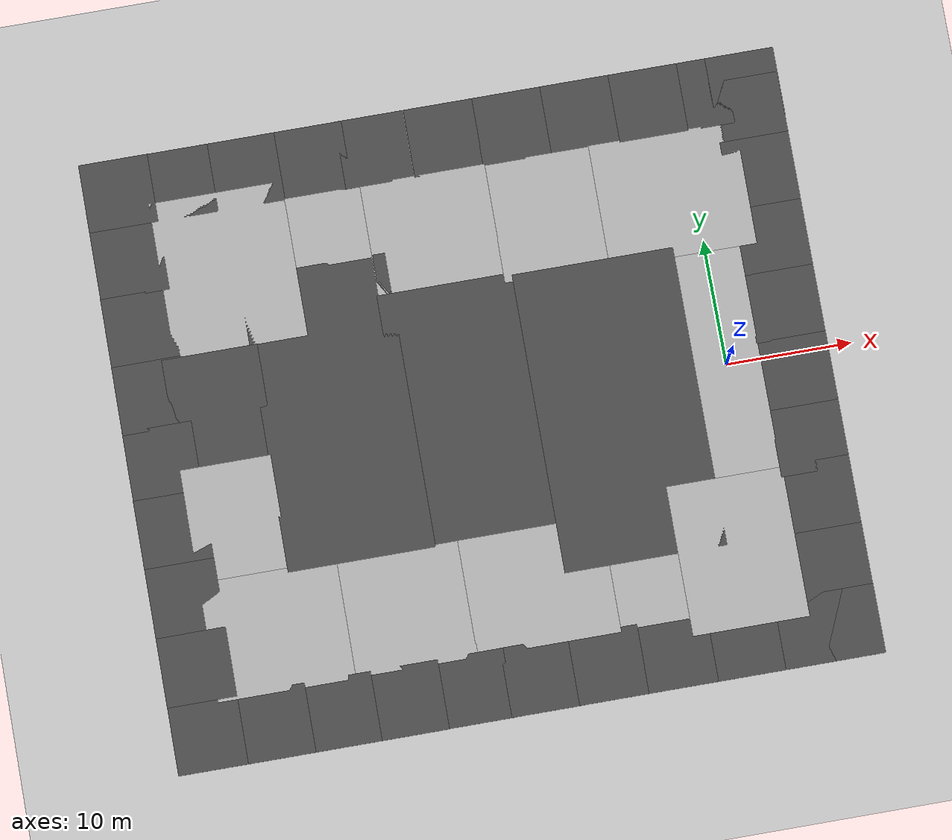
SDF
<sdf version="1.7">
 <world name="default">
  <light name="sun" type="directional">
   <pose>0 0 10 0 -0 0</pose>
   <diffuse>0.8 0.8 0.8 1</diffuse>
   <specular>0.2 0.2 0.2 1</specular>
   <attenuation>
    <range>1000</range>
    <constant>0.9</constant>
    <linear>0.01</linear>
    <quadratic>0.001</quadratic>
   </attenuation>
   <direction>-0.5 0.1 -0.9</direction>
   <spot><inner_angle>0</inner_angle><outer_angle>0</outer_angle><falloff>0</falloff></spot>
  </light>
  <model name="ground_plane">
   <static>1</static>
   <link name="link">
    <collision name="collision">
     <geometry><plane><normal>0 0 1</normal><size>100 100</size></plane></geometry>
     <surface>
      <contact><collide_bitmask>65535</collide_bitmask></contact>
      <friction><ode><mu>100</mu><mu2>50</mu2></ode></friction>
     </surface>
    </collision>
    <visual name="visual">
     <cast_shadows>0</cast_shadows>
     <geometry><plane><normal>0 0 1</normal><size>100 100</size></plane></geometry>
     <material>
      <script><uri>file://media/materials/scripts/gazebo.material</uri><name>Gazebo/Grey</name></script>
     </material>
    </visual>
   </link>
  </model>
  <gravity>0 0 -9.8</gravity>
  <magnetic_field>6e-06 2.3e-05 -4.2e-05</magnetic_field>
  <atmosphere type="adiabatic"/>
  <physics type="ode">
   <max_step_size>0.001</max_step_size>
   <real_time_factor>1</real_time_factor>
   <real_time_update_rate>1000</real_time_update_rate>
  </physics>
  <scene><ambient>0.4 0.4 0.4 1</ambient><background>0.7 0.7 0.7 1</background><shadows>1</shadows></scene>
  <audio><device>default</device></audio>
  <spherical_coordinates>
   <surface_model>EARTH_WGS84</surface_model>
   <latitude_deg>0</latitude_deg>
   <longitude_deg>0</longitude_deg>
   <elevation>0</elevation>
   <heading_deg>0</heading_deg>
  </spherical_coordinates>
  <model name="igvc_straightroad">
   <static>1</static>
   <link name="link">
    <collision name="collision"><geometry><box><size>5.5 18.3145 0.1</size></box></geometry></collision>
    <visual name="visual">
     <cast_shadows>0</cast_shadows>
     <geometry><box><size>5.5 18.3145 0.1</size></box></geometry>
     <material>
      <script>
       <uri>model://igvc_straightroad/materials/scripts</uri>
       <uri>model://igvc_straightroad/materials/textures</uri>
       <name>vrc/course</name>
      </script>
     </material>
    </visual>
   </link>
   <pose>-0.023965 0.014591 0 0 -0 0</pose>
  </model>
  <model name="igvc_curvedroad">
   <static>1</static>
   <link name="link">
    <collision name="collision"><geometry><box><size>9.25094 11.9099 0.1</size></box></geometry></collision>
    <visual name="visual">
     <cast_shadows>0</cast_shadows>
     <geometry><box><size>9.25094 11.9099 0.1</size></box></geometry>
     <material>
      <script>
       <uri>model://igvc_curvedroad/materials/scripts</uri>
       <uri>model://igvc_curvedroad/materials/textures</uri>
       <name>vrc/curved</name>
      </script>
     </material>
    </visual>
   </link>
   <pose>-1.77026 -14.6633 0 0 -0 0</pose>
  </model>
  <model name="igvc_straightroad_0">
   <static>1</static>
   <link name="link">
    <collision name="collision"><geometry><box><size>5.5 5.5 0.1</size></box></geometry></collision>
    <visual name="visual">
     <cast_shadows>0</cast_shadows>
     <geometry><box><size>5.5 5.5 0.1</size></box></geometry>
     <material>
      <script>
       <uri>model://igvc_straightroad/materials/scripts</uri>
       <uri>model://igvc_straightroad/materials/textures</uri>
       <name>vrc/course</name>
      </script>
     </material>
    </visual>
   </link>
   <pose>-9.12004 -16.457 0 0 0 -1.5719</pose>
  </model>
  <model name="igvc_bendedroad">
   <static>1</static>
   <link name="link">
    <collision name="collision"><geometry><box><size>9.25306 11.3764 0.1</size></box></geometry></collision>
    <visual name="visual">
     <cast_shadows>0</cast_shadows>
     <geometry><box><size>9.25306 11.3764 0.1</size></box></geometry>
     <material>
      <script>
       <uri>model://igvc_bendedroad/materials/scripts</uri>
       <uri>model://igvc_bendedroad/materials/textures</uri>
       <name>vrc/bended</name>
      </script>
     </material>
    </visual>
   </link>
   <pose>-17.5145 -14.6999 0 0 0 -1.57126</pose>
  </model>
  <model name="igvc_mirrorbendedroad">
   <static>1</static>
   <link name="link">
    <collision name="collision"><geometry><box><size>9.239 9.65116 0.1</size></box></geometry></collision>
    <visual name="visual">
     <cast_shadows>0</cast_shadows>
     <geometry><box><size>9.239 9.65116 0.1</size></box></geometry>
     <material>
      <script>
       <uri>model://igvc_mirrorbendedroad/materials/scripts</uri>
       <uri>model://igvc_mirrorbendedroad/materials/textures</uri>
       <name>vrc/mirrorbended</name>
      </script>
     </material>
    </visual>
   </link>
   <pose>-27.9547 -14.6889 0 0 0 -1.57364</pose>
  </model>
  <model name="igvc_curvedroad_0">
   <static>1</static>
   <link name="link">
    <collision name="collision"><geometry><box><size>9.50966 10.9375 0.1</size></box></geometry></collision>
    <visual name="visual">
     <cast_shadows>0</cast_shadows>
     <geometry><box><size>9.50966 10.9375 0.1</size></box></geometry>
     <material>
      <script>
       <uri>model://igvc_curvedroad/materials/scripts</uri>
       <uri>model://igvc_curvedroad/materials/textures</uri>
       <name>vrc/curved</name>
      </script>
     </material>
    </visual>
   </link>
   <pose>-38.2046 -14.6117 0 0 0 -1.57074</pose>
  </model>
  <model name="igvc_potholeroad">
   <static>1</static>
   <link name="link">
    <collision name="collision"><geometry><box><size>7.2225 9.0036 0.1</size></box></geometry></collision>
    <visual name="visual">
     <cast_shadows>0</cast_shadows>
     <geometry><box><size>7.2225 9.0036 0.1</size></box></geometry>
     <material>
      <script>
       <uri>model://igvc_potholeroad/materials/scripts</uri>
       <uri>model://igvc_potholeroad/materials/textures</uri>
       <name>vrc/pothole</name>
      </script>
     </material>
    </visual>
   </link>
   <pose>-40.0651 -5.40083 0 0 -0 0</pose>
  </model>
  <model name="igvc_asphalt">
   <static>1</static>
   <link name="link">
    <collision name="collision"><geometry><box><size>7.62916 10.2596 0.1</size></box></geometry></collision>
    <visual name="visual">
     <cast_shadows>0</cast_shadows>
     <geometry><box><size>7.62916 10.2596 0.1</size></box></geometry>
     <material>
      <script>
       <uri>model://igvc_asphalt/materials/scripts</uri>
       <uri>model://igvc_asphalt/materials/textures</uri>
       <name>vrc/asphalt</name>
      </script>
     </material>
    </visual>
   </link>
   <pose>-39.8604 2.81834 0 0 -0 0</pose>
  </model>
  <model name="igvc_curvedroad_1">
   <static>1</static>
   <link name="link">
    <collision name="collision"><geometry><box><size>9.93727 11.8029 0.1</size></box></geometry></collision>
    <visual name="visual">
     <cast_shadows>0</cast_shadows>
     <geometry><box><size>9.93727 11.8029 0.1</size></box></geometry>
     <material>
      <script>
       <uri>model://igvc_curvedroad/materials/scripts</uri>
       <uri>model://igvc_curvedroad/materials/textures</uri>
       <name>vrc/curved</name>
      </script>
     </material>
    </visual>
   </link>
   <pose>-1.77588 14.098 0 0 -0 1.56698</pose>
  </model>
  <model name="igvc_mirrorbendedroad_0">
   <static>1</static>
   <link name="link">
    <collision name="collision"><geometry><box><size>9.6582 8.3519 0.1</size></box></geometry></collision>
    <visual name="visual">
     <cast_shadows>0</cast_shadows>
     <geometry><box><size>9.6582 8.3519 0.1</size></box></geometry>
     <material>
      <script>
       <uri>model://igvc_mirrorbendedroad/materials/scripts</uri>
       <uri>model://igvc_mirrorbendedroad/materials/textures</uri>
       <name>vrc/mirrorbended</name>
      </script>
     </material>
    </visual>
   </link>
   <pose>-11.8324 14.1987 0 0 -0 1.56815</pose>
  </model>
  <model name="igvc_bendedroad_0">
   <static>1</static>
   <link name="link">
    <collision name="collision"><geometry><box><size>9.73437 10.0476 0.1</size></box></geometry></collision>
    <visual name="visual">
     <cast_shadows>0</cast_shadows>
     <geometry><box><size>9.73437 10.0476 0.1</size></box></geometry>
     <material>
      <script>
       <uri>model://igvc_bendedroad/materials/scripts</uri>
       <uri>model://igvc_bendedroad/materials/textures</uri>
       <name>vrc/bended</name>
      </script>
     </material>
    </visual>
   </link>
   <pose>-20.9968 14.1965 0 0 0 -1.57128</pose>
  </model>
  <model name="igvc_curvedroad_2">
   <static>1</static>
   <link name="link">
    <collision name="collision"><geometry><box><size>10.6296 12.5205 0.1</size></box></geometry></collision>
    <visual name="visual">
     <cast_shadows>0</cast_shadows>
     <geometry><box><size>10.6296 12.5205 0.1</size></box></geometry>
     <material>
      <script>
       <uri>model://igvc_curvedroad/materials/scripts</uri>
       <uri>model://igvc_curvedroad/materials/textures</uri>
       <name>vrc/curved</name>
      </script>
     </material>
    </visual>
   </link>
   <pose>-37.3251 14.1802 0 0 0 -3.14097</pose>
  </model>
  <model name="igvc_straightroad_1">
   <static>1</static>
   <link name="link">
    <collision name="collision"><geometry><box><size>5.82208 6.09373 0.1</size></box></geometry></collision>
    <visual name="visual">
     <cast_shadows>0</cast_shadows>
     <geometry><box><size>5.82208 6.09373 0.1</size></box></geometry>
     <material>
      <script>
       <uri>model://igvc_straightroad/materials/scripts</uri>
       <uri>model://igvc_straightroad/materials/textures</uri>
       <name>vrc/course</name>
      </script>
     </material>
    </visual>
   </link>
   <pose>-29.0345 16.0909 0 0 0 -1.57039</pose>
  </model>
  <model name="igvc_asphalt_0">
   <static>1</static>
   <link name="link">
    <collision name="collision"><geometry><box><size>11.699 23.6439 0.1</size></box></geometry></collision>
    <visual name="visual">
     <cast_shadows>0</cast_shadows>
     <geometry><box><size>11.699 23.6439 0.1</size></box></geometry>
     <material>
      <script>
       <uri>model://igvc_asphalt/materials/scripts</uri>
       <uri>model://igvc_asphalt/materials/textures</uri>
       <name>vrc/asphalt</name>
      </script>
     </material>
    </visual>
   </link>
   <pose>-30.7936 1.55894 0 0 -0 0</pose>
  </model>
  <model name="igvc_asphalt_1">
   <static>1</static>
   <link name="link">
    <collision name="collision"><geometry><box><size>12.8767 23.9498 0.1</size></box></geometry></collision>
    <visual name="visual">
     <cast_shadows>0</cast_shadows>
     <geometry><box><size>12.8767 23.9498 0.1</size></box></geometry>
     <material>
      <script>
       <uri>model://igvc_asphalt/materials/scripts</uri>
       <uri>model://igvc_asphalt/materials/textures</uri>
       <name>vrc/asphalt</name>
      </script>
     </material>
    </visual>
   </link>
   <pose>-8.9344 -2.05144 0 0 -0 0</pose>
  </model>
  <model name="igvc_asphalt_2">
   <static>1</static>
   <link name="link">
    <collision name="collision"><geometry><box><size>10.8948 20.6038 0.1</size></box></geometry></collision>
    <visual name="visual">
     <cast_shadows>0</cast_shadows>
     <geometry><box><size>10.8948 20.6038 0.1</size></box></geometry>
     <material>
      <script>
       <uri>model://igvc_asphalt/materials/scripts</uri>
       <uri>model://igvc_asphalt/materials/textures</uri>
       <name>vrc/asphalt</name>
      </script>
     </material>
    </visual>
   </link>
   <pose>-20.7067 -0.199516 0 0 -0 0</pose>
  </model>
  <model name="igvc_asphalt_5">
   <static>1</static>
   <link name="link">
    <collision name="collision"><geometry><box><size>5.5 5.5 0.1</size></box></geometry></collision>
    <visual name="visual">
     <cast_shadows>0</cast_shadows>
     <geometry><box><size>5.5 5.5 0.1</size></box></geometry>
     <material>
      <script>
       <uri>model://igvc_asphalt/materials/scripts</uri>
       <uri>model://igvc_asphalt/materials/textures</uri>
       <name>vrc/asphalt</name>
      </script>
     </material>
    </visual>
   </link>
   <pose>-40.0597 21.6619 0 0 -0 0</pose>
  </model>
  <model name="igvc_asphalt_6">
   <static>1</static>
   <link name="link">
    <collision name="collision"><geometry><box><size>5.5 5.5 0.1</size></box></geometry></collision>
    <visual name="visual">
     <cast_shadows>0</cast_shadows>
     <geometry><box><size>5.5 5.5 0.1</size></box></geometry>
     <material>
      <script>
       <uri>model://igvc_asphalt/materials/scripts</uri>
       <uri>model://igvc_asphalt/materials/textures</uri>
       <name>vrc/asphalt</name>
      </script>
     </material>
    </visual>
   </link>
   <pose>-34.7132 21.6595 0 0 -0 0</pose>
  </model>
  <model name="igvc_asphalt_7">
   <static>1</static>
   <link name="link">
    <collision name="collision"><geometry><box><size>5.5 5.5 0.1</size></box></geometry></collision>
    <visual name="visual">
     <cast_shadows>0</cast_shadows>
     <geometry><box><size>5.5 5.5 0.1</size></box></geometry>
     <material>
      <script>
       <uri>model://igvc_asphalt/materials/scripts</uri>
       <uri>model://igvc_asphalt/materials/textures</uri>
       <name>vrc/asphalt</name>
      </script>
     </material>
    </visual>
   </link>
   <pose>-29.3097 21.6617 0 0 -0 0</pose>
  </model>
  <model name="igvc_asphalt_8">
   <static>1</static>
   <link name="link">
    <collision name="collision"><geometry><box><size>5.5 5.5 0.1</size></box></geometry></collision>
    <visual name="visual">
     <cast_shadows>0</cast_shadows>
     <geometry><box><size>5.5 5.5 0.1</size></box></geometry>
     <material>
      <script>
       <uri>model://igvc_asphalt/materials/scripts</uri>
       <uri>model://igvc_asphalt/materials/textures</uri>
       <name>vrc/asphalt</name>
      </script>
     </material>
    </visual>
   </link>
   <pose>-24.348 21.6733 0 0 -0 0</pose>
  </model>
  <model name="igvc_asphalt_9">
   <static>1</static>
   <link name="link">
    <collision name="collision"><geometry><box><size>5.5 5.5 0.1</size></box></geometry></collision>
    <visual name="visual">
     <cast_shadows>0</cast_shadows>
     <geometry><box><size>5.5 5.5 0.1</size></box></geometry>
     <material>
      <script>
       <uri>model://igvc_asphalt/materials/scripts</uri>
       <uri>model://igvc_asphalt/materials/textures</uri>
       <name>vrc/asphalt</name>
      </script>
     </material>
    </visual>
   </link>
   <pose>-18.8215 21.6765 0 0 -0 0</pose>
  </model>
  <model name="igvc_asphalt_10">
   <static>1</static>
   <link name="link">
    <collision name="collision"><geometry><box><size>5.5 5.5 0.1</size></box></geometry></collision>
    <visual name="visual">
     <cast_shadows>0</cast_shadows>
     <geometry><box><size>5.5 5.5 0.1</size></box></geometry>
     <material>
      <script>
       <uri>model://igvc_asphalt/materials/scripts</uri>
       <uri>model://igvc_asphalt/materials/textures</uri>
       <name>vrc/asphalt</name>
      </script>
     </material>
    </visual>
   </link>
   <pose>-13.3548 21.6795 0 0 -0 0</pose>
  </model>
  <model name="igvc_asphalt_11">
   <static>1</static>
   <link name="link">
    <collision name="collision"><geometry><box><size>5.5 5.5 0.1</size></box></geometry></collision>
    <visual name="visual">
     <cast_shadows>0</cast_shadows>
     <geometry><box><size>5.5 5.5 0.1</size></box></geometry>
     <material>
      <script>
       <uri>model://igvc_asphalt/materials/scripts</uri>
       <uri>model://igvc_asphalt/materials/textures</uri>
       <name>vrc/asphalt</name>
      </script>
     </material>
    </visual>
   </link>
   <pose>-7.85594 21.6851 0 0 -0 0</pose>
  </model>
  <model name="igvc_asphalt_12">
   <static>1</static>
   <link name="link">
    <collision name="collision"><geometry><box><size>5.5 5.5 0.1</size></box></geometry></collision>
    <visual name="visual">
     <cast_shadows>0</cast_shadows>
     <geometry><box><size>5.5 5.5 0.1</size></box></geometry>
     <material>
      <script>
       <uri>model://igvc_asphalt/materials/scripts</uri>
       <uri>model://igvc_asphalt/materials/textures</uri>
       <name>vrc/asphalt</name>
      </script>
     </material>
    </visual>
   </link>
   <pose>-2.36571 21.6825 0 0 -0 0</pose>
  </model>
  <model name="igvc_asphalt_13">
   <static>1</static>
   <link name="link">
    <collision name="collision"><geometry><box><size>5.5 5.5 0.1</size></box></geometry></collision>
    <visual name="visual">
     <cast_shadows>0</cast_shadows>
     <geometry><box><size>5.5 5.5 0.1</size></box></geometry>
     <material>
      <script>
       <uri>model://igvc_asphalt/materials/scripts</uri>
       <uri>model://igvc_asphalt/materials/textures</uri>
       <name>vrc/asphalt</name>
      </script>
     </material>
    </visual>
   </link>
   <pose>1.3829 21.6797 0 0 -0 0</pose>
  </model>
  <model name="igvc_asphalt_3">
   <static>1</static>
   <link name="link">
    <collision name="collision"><geometry><box><size>5.5 5.5 0.1</size></box></geometry></collision>
    <visual name="visual">
     <cast_shadows>0</cast_shadows>
     <geometry><box><size>5.5 5.5 0.1</size></box></geometry>
     <material>
      <script>
       <uri>model://igvc_asphalt/materials/scripts</uri>
       <uri>model://igvc_asphalt/materials/textures</uri>
       <name>vrc/asphalt</name>
      </script>
     </material>
    </visual>
   </link>
   <pose>-44.865 21.6777 0 0 -0 0</pose>
  </model>
  <model name="igvc_asphalt_4">
   <static>1</static>
   <link name="link">
    <collision name="collision"><geometry><box><size>5.5 5.5 0.1</size></box></geometry></collision>
    <visual name="visual">
     <cast_shadows>0</cast_shadows>
     <geometry><box><size>5.5 5.5 0.1</size></box></geometry>
     <material>
      <script>
       <uri>model://igvc_asphalt/materials/scripts</uri>
       <uri>model://igvc_asphalt/materials/textures</uri>
       <name>vrc/asphalt</name>
      </script>
     </material>
    </visual>
   </link>
   <pose>-44.8613 16.185 0 0 -0 0</pose>
  </model>
  <model name="igvc_asphalt_14">
   <static>1</static>
   <link name="link">
    <collision name="collision"><geometry><box><size>5.5 5.5 0.1</size></box></geometry></collision>
    <visual name="visual">
     <cast_shadows>0</cast_shadows>
     <geometry><box><size>5.5 5.5 0.1</size></box></geometry>
     <material>
      <script>
       <uri>model://igvc_asphalt/materials/scripts</uri>
       <uri>model://igvc_asphalt/materials/textures</uri>
       <name>vrc/asphalt</name>
      </script>
     </material>
    </visual>
   </link>
   <pose>-44.8764 10.7973 0 0 -0 0</pose>
  </model>
  <model name="igvc_asphalt_15">
   <static>1</static>
   <link name="link">
    <collision name="collision"><geometry><box><size>5.5 5.5 0.1</size></box></geometry></collision>
    <visual name="visual">
     <cast_shadows>0</cast_shadows>
     <geometry><box><size>5.5 5.5 0.1</size></box></geometry>
     <material>
      <script>
       <uri>model://igvc_asphalt/materials/scripts</uri>
       <uri>model://igvc_asphalt/materials/textures</uri>
       <name>vrc/asphalt</name>
      </script>
     </material>
    </visual>
   </link>
   <pose>-44.8874 5.31335 0 0 -0 0</pose>
  </model>
  <model name="igvc_asphalt_16">
   <static>1</static>
   <link name="link">
    <collision name="collision"><geometry><box><size>5.5 5.5 0.1</size></box></geometry></collision>
    <visual name="visual">
     <cast_shadows>0</cast_shadows>
     <geometry><box><size>5.5 5.5 0.1</size></box></geometry>
     <material>
      <script>
       <uri>model://igvc_asphalt/materials/scripts</uri>
       <uri>model://igvc_asphalt/materials/textures</uri>
       <name>vrc/asphalt</name>
      </script>
     </material>
    </visual>
   </link>
   <pose>-44.8962 0.074526 0 0 -0 0</pose>
  </model>
  <model name="igvc_asphalt_17">
   <static>1</static>
   <link name="link">
    <collision name="collision"><geometry><box><size>5.5 5.5 0.1</size></box></geometry></collision>
    <visual name="visual">
     <cast_shadows>0</cast_shadows>
     <geometry><box><size>5.5 5.5 0.1</size></box></geometry>
     <material>
      <script>
       <uri>model://igvc_asphalt/materials/scripts</uri>
       <uri>model://igvc_asphalt/materials/textures</uri>
       <name>vrc/asphalt</name>
      </script>
     </material>
    </visual>
   </link>
   <pose>-44.9097 -5.40945 0 0 -0 0</pose>
  </model>
  <model name="igvc_asphalt_18">
   <static>1</static>
   <link name="link">
    <collision name="collision"><geometry><box><size>5.5 5.5 0.1</size></box></geometry></collision>
    <visual name="visual">
     <cast_shadows>0</cast_shadows>
     <geometry><box><size>5.5 5.5 0.1</size></box></geometry>
     <material>
      <script>
       <uri>model://igvc_asphalt/materials/scripts</uri>
       <uri>model://igvc_asphalt/materials/textures</uri>
       <name>vrc/asphalt</name>
      </script>
     </material>
    </visual>
   </link>
   <pose>-44.9008 -10.8761 0 0 -0 0</pose>
  </model>
  <model name="igvc_asphalt_19">
   <static>1</static>
   <link name="link">
    <collision name="collision"><geometry><box><size>5.5 5.5 0.1</size></box></geometry></collision>
    <visual name="visual">
     <cast_shadows>0</cast_shadows>
     <geometry><box><size>5.5 5.5 0.1</size></box></geometry>
     <material>
      <script>
       <uri>model://igvc_asphalt/materials/scripts</uri>
       <uri>model://igvc_asphalt/materials/textures</uri>
       <name>vrc/asphalt</name>
      </script>
     </material>
    </visual>
   </link>
   <pose>-44.9033 -16.3615 0 0 -0 0</pose>
  </model>
  <model name="igvc_asphalt_20">
   <static>1</static>
   <link name="link">
    <collision name="collision"><geometry><box><size>5.5 5.5 0.1</size></box></geometry></collision>
    <visual name="visual">
     <cast_shadows>0</cast_shadows>
     <geometry><box><size>5.5 5.5 0.1</size></box></geometry>
     <material>
      <script>
       <uri>model://igvc_asphalt/materials/scripts</uri>
       <uri>model://igvc_asphalt/materials/textures</uri>
       <name>vrc/asphalt</name>
      </script>
     </material>
    </visual>
   </link>
   <pose>-44.8955 -21.7218 0 0 -0 0</pose>
  </model>
  <model name="igvc_asphalt_21">
   <static>1</static>
   <link name="link">
    <collision name="collision"><geometry><box><size>5.5 5.5 0.1</size></box></geometry></collision>
    <visual name="visual">
     <cast_shadows>0</cast_shadows>
     <geometry><box><size>5.5 5.5 0.1</size></box></geometry>
     <material>
      <script>
       <uri>model://igvc_asphalt/materials/scripts</uri>
       <uri>model://igvc_asphalt/materials/textures</uri>
       <name>vrc/asphalt</name>
      </script>
     </material>
    </visual>
   </link>
   <pose>-39.5761 -21.7285 0 0 -0 0</pose>
  </model>
  <model name="igvc_asphalt_22">
   <static>1</static>
   <link name="link">
    <collision name="collision"><geometry><box><size>5.5 5.5 0.1</size></box></geometry></collision>
    <visual name="visual">
     <cast_shadows>0</cast_shadows>
     <geometry><box><size>5.5 5.5 0.1</size></box></geometry>
     <material>
      <script>
       <uri>model://igvc_asphalt/materials/scripts</uri>
       <uri>model://igvc_asphalt/materials/textures</uri>
       <name>vrc/asphalt</name>
      </script>
     </material>
    </visual>
   </link>
   <pose>-34.3625 -21.725 0 0 -0 0</pose>
  </model>
  <model name="igvc_asphalt_23">
   <static>1</static>
   <link name="link">
    <collision name="collision"><geometry><box><size>5.5 5.5 0.1</size></box></geometry></collision>
    <visual name="visual">
     <cast_shadows>0</cast_shadows>
     <geometry><box><size>5.5 5.5 0.1</size></box></geometry>
     <material>
      <script>
       <uri>model://igvc_asphalt/materials/scripts</uri>
       <uri>model://igvc_asphalt/materials/textures</uri>
       <name>vrc/asphalt</name>
      </script>
     </material>
    </visual>
   </link>
   <pose>-29.0582 -21.7255 0 0 -0 0</pose>
  </model>
  <model name="igvc_asphalt_24">
   <static>1</static>
   <link name="link">
    <collision name="collision"><geometry><box><size>5.5 5.5 0.1</size></box></geometry></collision>
    <visual name="visual">
     <cast_shadows>0</cast_shadows>
     <geometry><box><size>5.5 5.5 0.1</size></box></geometry>
     <material>
      <script>
       <uri>model://igvc_asphalt/materials/scripts</uri>
       <uri>model://igvc_asphalt/materials/textures</uri>
       <name>vrc/asphalt</name>
      </script>
     </material>
    </visual>
   </link>
   <pose>-23.8917 -21.703 0 0 -0 0</pose>
  </model>
  <model name="igvc_asphalt_25">
   <static>1</static>
   <link name="link">
    <collision name="collision"><geometry><box><size>5.5 5.5 0.1</size></box></geometry></collision>
    <visual name="visual">
     <cast_shadows>0</cast_shadows>
     <geometry><box><size>5.5 5.5 0.1</size></box></geometry>
     <material>
      <script>
       <uri>model://igvc_asphalt/materials/scripts</uri>
       <uri>model://igvc_asphalt/materials/textures</uri>
       <name>vrc/asphalt</name>
      </script>
     </material>
    </visual>
   </link>
   <pose>-18.6334 -21.6893 0 0 -0 0</pose>
  </model>
  <model name="igvc_asphalt_26">
   <static>1</static>
   <link name="link">
    <collision name="collision"><geometry><box><size>5.5 5.5 0.1</size></box></geometry></collision>
    <visual name="visual">
     <cast_shadows>0</cast_shadows>
     <geometry><box><size>5.5 5.5 0.1</size></box></geometry>
     <material>
      <script>
       <uri>model://igvc_asphalt/materials/scripts</uri>
       <uri>model://igvc_asphalt/materials/textures</uri>
       <name>vrc/asphalt</name>
      </script>
     </material>
    </visual>
   </link>
   <pose>-13.289 -21.6781 0 0 -0 0</pose>
  </model>
  <model name="igvc_asphalt_27">
   <static>1</static>
   <link name="link">
    <collision name="collision"><geometry><box><size>5.5 5.5 0.1</size></box></geometry></collision>
    <visual name="visual">
     <cast_shadows>0</cast_shadows>
     <geometry><box><size>5.5 5.5 0.1</size></box></geometry>
     <material>
      <script>
       <uri>model://igvc_asphalt/materials/scripts</uri>
       <uri>model://igvc_asphalt/materials/textures</uri>
       <name>vrc/asphalt</name>
      </script>
     </material>
    </visual>
   </link>
   <pose>-7.81052 -21.6776 0 0 -0 0</pose>
  </model>
  <model name="igvc_asphalt_28">
   <static>1</static>
   <link name="link">
    <collision name="collision"><geometry><box><size>5.5 5.5 0.1</size></box></geometry></collision>
    <visual name="visual">
     <cast_shadows>0</cast_shadows>
     <geometry><box><size>5.5 5.5 0.1</size></box></geometry>
     <material>
      <script>
       <uri>model://igvc_asphalt/materials/scripts</uri>
       <uri>model://igvc_asphalt/materials/textures</uri>
       <name>vrc/asphalt</name>
      </script>
     </material>
    </visual>
   </link>
   <pose>-2.40022 -21.6803 0 0 -0 0</pose>
  </model>
  <model name="igvc_asphalt_29">
   <static>1</static>
   <link name="link">
    <collision name="collision"><geometry><box><size>5.5 5.5 0.1</size></box></geometry></collision>
    <visual name="visual">
     <cast_shadows>0</cast_shadows>
     <geometry><box><size>5.5 5.5 0.1</size></box></geometry>
     <material>
      <script>
       <uri>model://igvc_asphalt/materials/scripts</uri>
       <uri>model://igvc_asphalt/materials/textures</uri>
       <name>vrc/asphalt</name>
      </script>
     </material>
    </visual>
   </link>
   <pose>3.02308 -21.6814 0 0 -0 0</pose>
  </model>
  <model name="igvc_asphalt_30">
   <static>1</static>
   <link name="link">
    <collision name="collision"><geometry><box><size>5.5 5.5 0.1</size></box></geometry></collision>
    <visual name="visual">
     <cast_shadows>0</cast_shadows>
     <geometry><box><size>5.5 5.5 0.1</size></box></geometry>
     <material>
      <script>
       <uri>model://igvc_asphalt/materials/scripts</uri>
       <uri>model://igvc_asphalt/materials/textures</uri>
       <name>vrc/asphalt</name>
      </script>
     </material>
    </visual>
   </link>
   <pose>5.40465 -16.7986 0 0 -0 0</pose>
  </model>
  <model name="igvc_asphalt_31">
   <static>1</static>
   <link name="link">
    <collision name="collision"><geometry><box><size>5.5 5.5 0.1</size></box></geometry></collision>
    <visual name="visual">
     <cast_shadows>0</cast_shadows>
     <geometry><box><size>5.5 5.5 0.1</size></box></geometry>
     <material>
      <script>
       <uri>model://igvc_asphalt/materials/scripts</uri>
       <uri>model://igvc_asphalt/materials/textures</uri>
       <name>vrc/asphalt</name>
      </script>
     </material>
    </visual>
   </link>
   <pose>5.42209 -21.68 0 0 -0 0</pose>
  </model>
  <model name="igvc_asphalt_32">
   <static>1</static>
   <link name="link">
    <collision name="collision"><geometry><box><size>5.5 5.5 0.1</size></box></geometry></collision>
    <visual name="visual">
     <cast_shadows>0</cast_shadows>
     <geometry><box><size>5.5 5.5 0.1</size></box></geometry>
     <material>
      <script>
       <uri>model://igvc_asphalt/materials/scripts</uri>
       <uri>model://igvc_asphalt/materials/textures</uri>
       <name>vrc/asphalt</name>
      </script>
     </material>
    </visual>
   </link>
   <pose>5.39761 -11.3838 0 0 -0 0</pose>
  </model>
  <model name="igvc_asphalt_33">
   <static>1</static>
   <link name="link">
    <collision name="collision"><geometry><box><size>5.5 5.5 0.1</size></box></geometry></collision>
    <visual name="visual">
     <cast_shadows>0</cast_shadows>
     <geometry><box><size>5.5 5.5 0.1</size></box></geometry>
     <material>
      <script>
       <uri>model://igvc_asphalt/materials/scripts</uri>
       <uri>model://igvc_asphalt/materials/textures</uri>
       <name>vrc/asphalt</name>
      </script>
     </material>
    </visual>
   </link>
   <pose>5.39851 -6.76453 0 0 -0 0</pose>
  </model>
  <model name="igvc_asphalt_34">
   <static>1</static>
   <link name="link">
    <collision name="collision"><geometry><box><size>5.5 5.5 0.1</size></box></geometry></collision>
    <visual name="visual">
     <cast_shadows>0</cast_shadows>
     <geometry><box><size>5.5 5.5 0.1</size></box></geometry>
     <material>
      <script>
       <uri>model://igvc_asphalt/materials/scripts</uri>
       <uri>model://igvc_asphalt/materials/textures</uri>
       <name>vrc/asphalt</name>
      </script>
     </material>
    </visual>
   </link>
   <pose>5.39756 -1.43787 0 0 -0 0</pose>
  </model>
  <model name="igvc_asphalt_35">
   <static>1</static>
   <link name="link">
    <collision name="collision"><geometry><box><size>5.5 5.5 0.1</size></box></geometry></collision>
    <visual name="visual">
     <cast_shadows>0</cast_shadows>
     <geometry><box><size>5.5 5.5 0.1</size></box></geometry>
     <material>
      <script>
       <uri>model://igvc_asphalt/materials/scripts</uri>
       <uri>model://igvc_asphalt/materials/textures</uri>
       <name>vrc/asphalt</name>
      </script>
     </material>
    </visual>
   </link>
   <pose>5.39457 3.98146 0 0 -0 0</pose>
  </model>
  <model name="igvc_asphalt_36">
   <static>1</static>
   <link name="link">
    <collision name="collision"><geometry><box><size>5.5 5.5 0.1</size></box></geometry></collision>
    <visual name="visual">
     <cast_shadows>0</cast_shadows>
     <geometry><box><size>5.5 5.5 0.1</size></box></geometry>
     <material>
      <script>
       <uri>model://igvc_asphalt/materials/scripts</uri>
       <uri>model://igvc_asphalt/materials/textures</uri>
       <name>vrc/asphalt</name>
      </script>
     </material>
    </visual>
   </link>
   <pose>5.39238 9.44006 0 0 -0 0</pose>
  </model>
  <model name="igvc_asphalt_37">
   <static>1</static>
   <link name="link">
    <collision name="collision"><geometry><box><size>5.5 5.5 0.1</size></box></geometry></collision>
    <visual name="visual">
     <cast_shadows>0</cast_shadows>
     <geometry><box><size>5.5 5.5 0.1</size></box></geometry>
     <material>
      <script>
       <uri>model://igvc_asphalt/materials/scripts</uri>
       <uri>model://igvc_asphalt/materials/textures</uri>
       <name>vrc/asphalt</name>
      </script>
     </material>
    </visual>
   </link>
   <pose>5.39757 14.8045 0 0 -0 0</pose>
  </model>
  <model name="igvc_asphalt_38">
   <static>1</static>
   <link name="link">
    <collision name="collision"><geometry><box><size>5.5 5.5 0.1</size></box></geometry></collision>
    <visual name="visual">
     <cast_shadows>0</cast_shadows>
     <geometry><box><size>5.5 5.5 0.1</size></box></geometry>
     <material>
      <script>
       <uri>model://igvc_asphalt/materials/scripts</uri>
       <uri>model://igvc_asphalt/materials/textures</uri>
       <name>vrc/asphalt</name>
      </script>
     </material>
    </visual>
   </link>
   <pose>5.40264 19.6891 0 0 -0 0</pose>
  </model>
  <model name="igvc_asphalt_39">
   <static>1</static>
   <link name="link">
    <collision name="collision"><geometry><box><size>5.5 5.5 0.1</size></box></geometry></collision>
    <visual name="visual">
     <cast_shadows>0</cast_shadows>
     <geometry><box><size>5.5 5.5 0.1</size></box></geometry>
     <material>
      <script>
       <uri>model://igvc_asphalt/materials/scripts</uri>
       <uri>model://igvc_asphalt/materials/textures</uri>
       <name>vrc/asphalt</name>
      </script>
     </material>
    </visual>
   </link>
   <pose>5.42786 21.6798 0 0 -0 0</pose>
  </model>
 </world>
</sdf>
